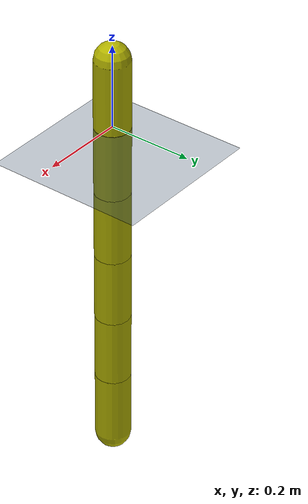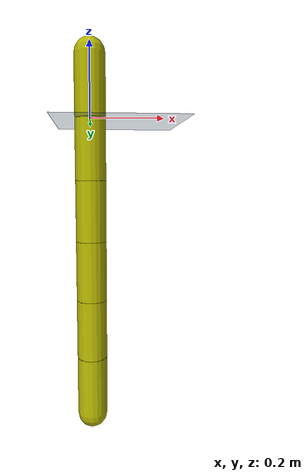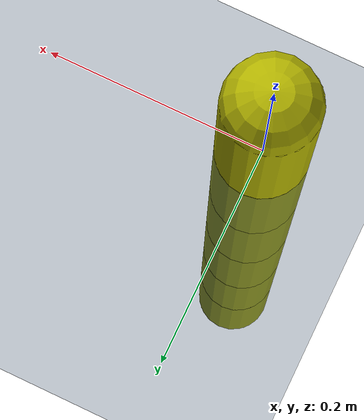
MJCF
<?xml version="1.0" encoding="utf-8"?>
<mujoco model="snake_robot">
    <compiler angle="degree" coordinate="local" inertiafromgeom="true"/>
    <option integrator="RK4" timestep="0.01"/>
    <default>
        <joint armature="1" damping="1" limited="true"/>
        <geom conaffinity="0" condim="3" density="5.0" friction="1.5 0.1 0.1" margin="0.01"/>
    </default>

    <worldbody>
        <!-- Ground plane -->
        <geom name="floor" pos="0 0 0" size="50 50 0.125" type="plane" material="groundplane"/>

        <!-- Snake body -->
        <body name="head" pos="0 0 0.08333333333333333">
            <joint name="root_x" type="slide" axis="1 0 0" pos="0 0 0"/>
            <joint name="root_y" type="slide" axis="0 1 0" pos="0 0 0"/>
            <joint name="root_z" type="slide" axis="0 0 1" pos="0 0 0"/>
            <joint name="root_rx" type="hinge" axis="1 0 0" pos="0 0 0"/>
            <joint name="root_ry" type="hinge" axis="0 1 0" pos="0 0 0"/>
            <joint name="root_rz" type="hinge" axis="0 0 1" pos="0 0 0"/>

            <geom name="head" type="capsule" size="0.041666666666666664 0.08333333333333333" rgba="0.7 0.7 0 1"/>
            <body name="segment1" pos="0 0 -0.16666666666666666">
                            <joint name="joint1" type="hinge" axis="0 1 0" range="-45 45"/>
                <geom name="segment1" type="capsule" size="0.041666666666666664 0.08333333333333333" rgba="0.7 0.7 0 1"/>
            <body name="segment2" pos="0 0 -0.16666666666666666">
                                <joint name="joint2" type="hinge" axis="0 1 0" range="-45 45"/>
                <geom name="segment2" type="capsule" size="0.041666666666666664 0.08333333333333333" rgba="0.7 0.7 0 1"/>
            <body name="segment3" pos="0 0 -0.16666666666666666">
                                    <joint name="joint3" type="hinge" axis="0 1 0" range="-45 45"/>
                <geom name="segment3" type="capsule" size="0.041666666666666664 0.08333333333333333" rgba="0.7 0.7 0 1"/>
            <body name="segment4" pos="0 0 -0.16666666666666666">
                                        <joint name="joint4" type="hinge" axis="0 1 0" range="-45 45"/>
                <geom name="segment4" type="capsule" size="0.041666666666666664 0.08333333333333333" rgba="0.7 0.7 0 1"/>
            <body name="segment5" pos="0 0 -0.16666666666666666">
                                            <joint name="joint5" type="hinge" axis="0 1 0" range="-45 45"/>
                <geom name="segment5" type="capsule" size="0.041666666666666664 0.08333333333333333" rgba="0.7 0.7 0 1"/>
                                </body>
</body>
</body>
</body>
</body>
        </body>
    </worldbody>

    <actuator>
        <motor joint="joint1" gear="100" name="motor1"/>
        <motor joint="joint2" gear="100" name="motor2"/>
        <motor joint="joint3" gear="100" name="motor3"/>
        <motor joint="joint4" gear="100" name="motor4"/>
        <motor joint="joint5" gear="100" name="motor5"/>
    </actuator>

    <asset>
        <texture name="groundplane" type="2d" builtin="checker" rgb1="0.2 0.3 0.4" rgb2="0.1 0.2 0.3" width="100" height="100"/>
        <material name="groundplane" texture="groundplane" texrepeat="20 20"/>
    </asset>
</mujoco>
